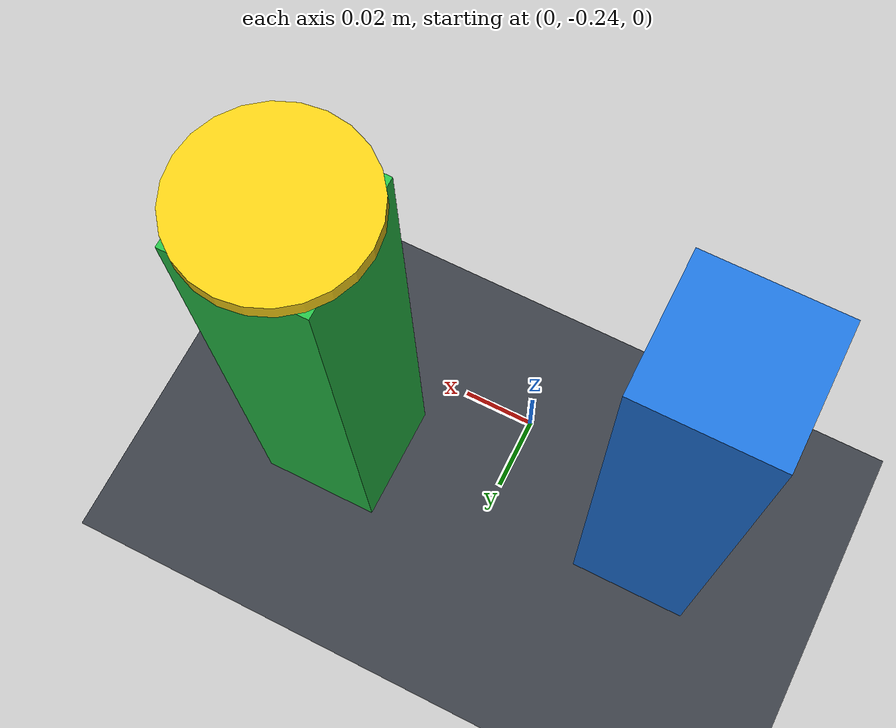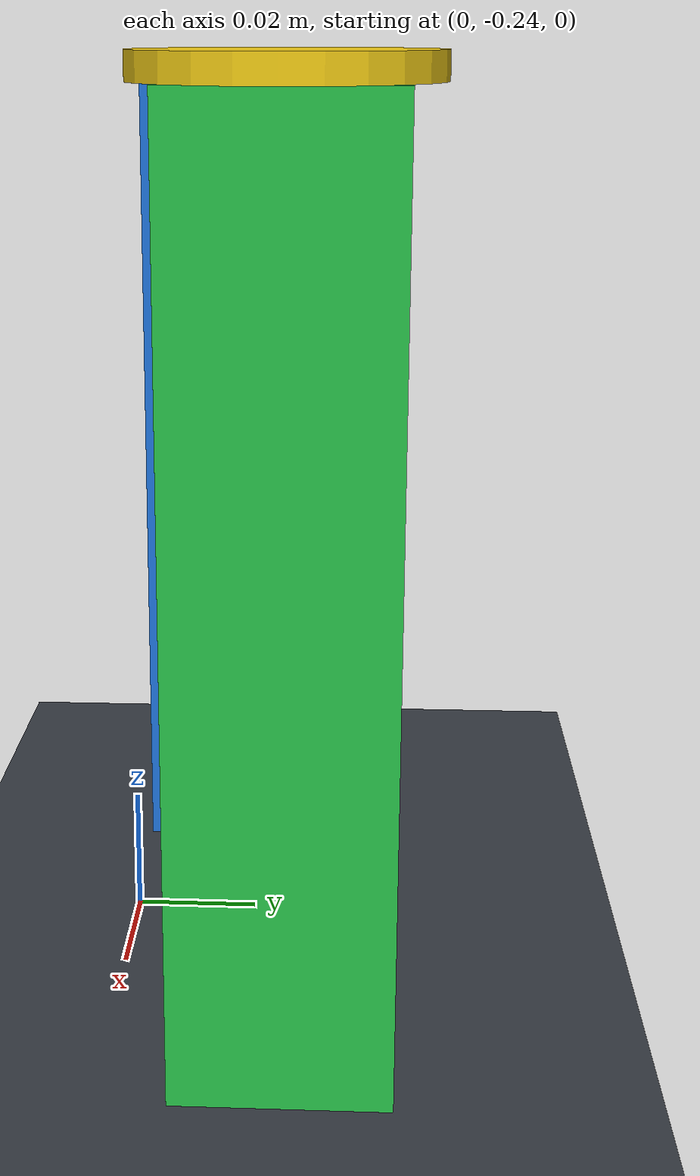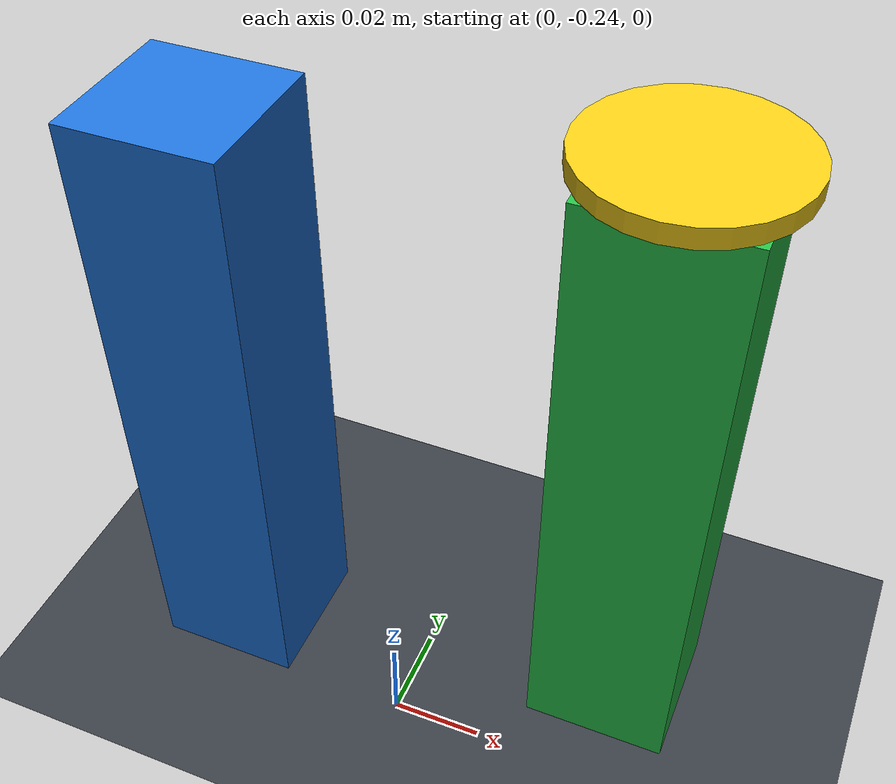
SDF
<?xml version="1.0"?>
<sdf version="1.9">
  <world name="pick_and_place">
    <gravity>0 0 -9.81</gravity>
    <physics name="a1_1ms" type="gz">
      <max_step_size>0.001</max_step_size>
      <real_time_factor>1.0</real_time_factor>
    </physics>
    <plugin filename="gz-sim-physics-system" name="gz::sim::systems::Physics"/>
    <plugin filename="gz-sim-user-commands-system" name="gz::sim::systems::UserCommands"/>
    <plugin filename="gz-sim-scene-broadcaster-system" name="gz::sim::systems::SceneBroadcaster"/>
    <plugin filename="gz-sim-contact-system" name="gz::sim::systems::Contact"/>
    <plugin filename="gz-sim-sensors-system" name="gz::sim::systems::Sensors">
      <render_engine>ogre2</render_engine>
    </plugin>
    <light type="directional" name="sun">
      <pose>0 0 5 0 0 0</pose>
      <direction>-0.4 0.3 -1</direction>
      <diffuse>0.9 0.9 0.9 1</diffuse>
    </light>
    <model name="ground">
      <static>true</static>
      <link name="ground_link">
        <collision name="ground_collision">
          <geometry><plane><normal>0 0 1</normal><size>4 4</size></plane></geometry>
        </collision>
        <visual name="ground_visual">
          <geometry><plane><normal>0 0 1</normal><size>4 4</size></plane></geometry>
          <material><diffuse>0.22 0.24 0.27 1</diffuse></material>
        </visual>
      </link>
    </model>
    <model name="pick_support">
      <static>true</static>
      <pose>-0.044 -0.225 0.070 0 0 0</pose>
      <link name="support_link">
        <collision name="pick_support_collision">
          <geometry><box><size>0.032 0.032 0.140</size></box></geometry>
          <surface>
            <friction><ode><mu>0.9</mu><mu2>0.9</mu2></ode></friction>
            <contact><ode><kp>100000</kp><kd>1.0</kd><max_vel>0.01</max_vel><min_depth>0.0001</min_depth></ode></contact>
          </surface>
        </collision>
        <visual name="pick_support_visual">
          <geometry><box><size>0.032 0.032 0.140</size></box></geometry>
          <material><diffuse>0.12 0.45 0.85 1</diffuse></material>
        </visual>
        <sensor name="pick_support_contact_sensor" type="contact">
          <contact>
            <collision>pick_support_collision</collision>
            <topic>/pick_support/contacts</topic>
          </contact>
          <always_on>true</always_on>
          <update_rate>200</update_rate>
        </sensor>
      </link>
    </model>
    <model name="place_support">
      <static>true</static>
      <pose>0.044 -0.213 0.070 0 0 0</pose>
      <link name="support_link">
        <collision name="place_support_collision">
          <geometry><box><size>0.032 0.032 0.140</size></box></geometry>
          <surface>
            <friction><ode><mu>0.9</mu><mu2>0.9</mu2></ode></friction>
            <contact><ode><kp>100000</kp><kd>1.0</kd><max_vel>0.01</max_vel><min_depth>0.0001</min_depth></ode></contact>
          </surface>
        </collision>
        <visual name="place_support_visual">
          <geometry><box><size>0.032 0.032 0.140</size></box></geometry>
          <material><diffuse>0.15 0.75 0.28 1</diffuse></material>
        </visual>
        <visual name="target_ring">
          <pose>0 0 0.072 0 0 0</pose>
          <geometry><cylinder><radius>0.021</radius><length>0.004</length></cylinder></geometry>
          <material><diffuse>0.95 0.8 0.08 1</diffuse></material>
        </visual>
        <sensor name="place_support_contact_sensor" type="contact">
          <contact>
            <collision>place_support_collision</collision>
            <topic>/place_support/contacts</topic>
          </contact>
          <always_on>true</always_on>
          <update_rate>200</update_rate>
        </sensor>
      </link>
    </model>
    <model name="evidence_camera">
      <static>true</static>
      <pose>-0.26 -0.53 0.35 0 0.38 0.94</pose>
      <link name="camera_link">
        <sensor name="a1_evidence_camera" type="camera">
          <topic>/pick_place/evidence/image</topic>
          <update_rate>60</update_rate>
          <always_on>true</always_on>
          <camera>
            <horizontal_fov>0.85</horizontal_fov>
            <image><width>960</width><height>720</height><format>R8G8B8</format></image>
            <clip><near>0.05</near><far>4.0</far></clip>
          </camera>
        </sensor>
      </link>
    </model>
  </world>
</sdf>
